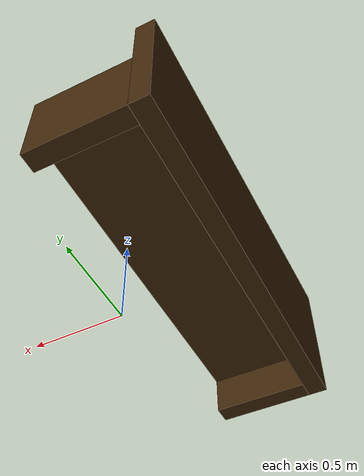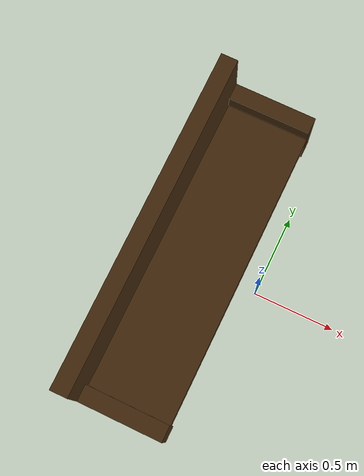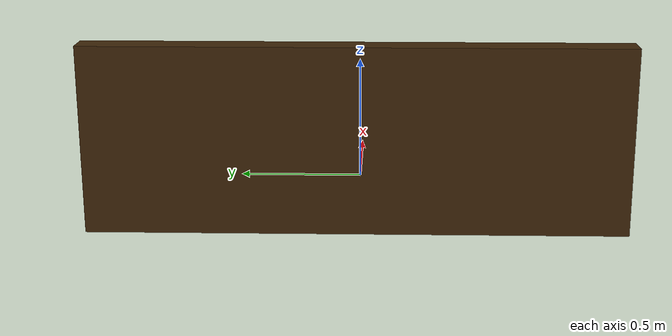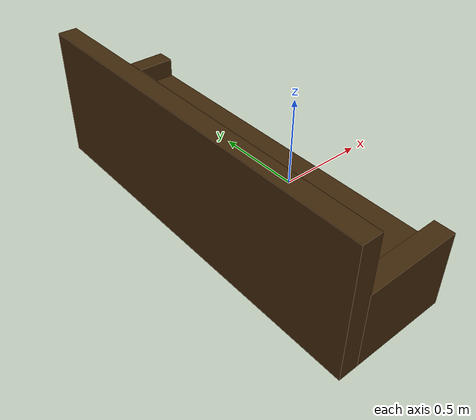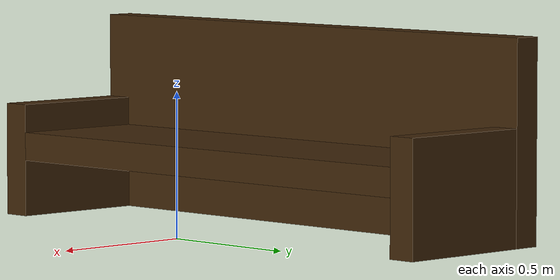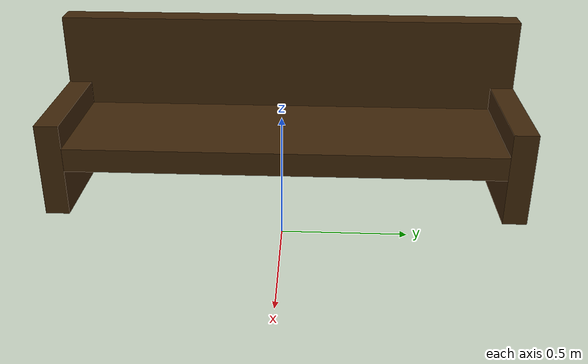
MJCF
<mujoco model="bench">
  <worldbody>
    <body name="bench" pos="-0.35 0 0" quat="1 0 0 0">
      <geom name="seat" type="box" pos="0 0 0.25" size=".25 .9 .05" mass="1." material="seat"/>
      <geom name="back" type="box" pos="-0.3 0 0.35" size=".05 1. .35" mass="1." quat="1 0 0 0" material="wood"/>
      <body name="left_arm" pos="0 0.95 0.2" quat="1 0 0 0">
        <geom name="left_arm" type="box" pos="0 0 0" size=".25 0.05 .2" mass="1." quat="1 0 0 0" material="wood"/>
      </body>
      <body name="right_arm" pos="0 -0.95 0.2" quat="1 0 0 0">
        <geom name="right_arm" type="box" pos="0 0 0" size=".25 0.05 .2" mass="1." quat="1 0 0 0" material="wood"/>
      </body>
    </body>
  </worldbody>

  <asset>
    <material name="seat" rgba="0.25 0.15 0.04 1"/>
    <material name="wood" rgba="0.25 0.15 0.04 1"/>
  </asset>

  <keyframe>
    <key name="home"
      qpos="-0.38
      0.015
      0.82
      1.00
      -0.032
      -0.004
      -0.051
      -0.035
      -0.22
      0.064
      0.034
      0.051
      -1.5
      -1.6
      0.2
      0.013
      0.024
      -0.081
      -1.5
      -2.1
      -0.37
      0.063
      0.66
      -0.65
      -1.1
      0.58
      -0.73
      -0.95" />
  </keyframe>
</mujoco>
